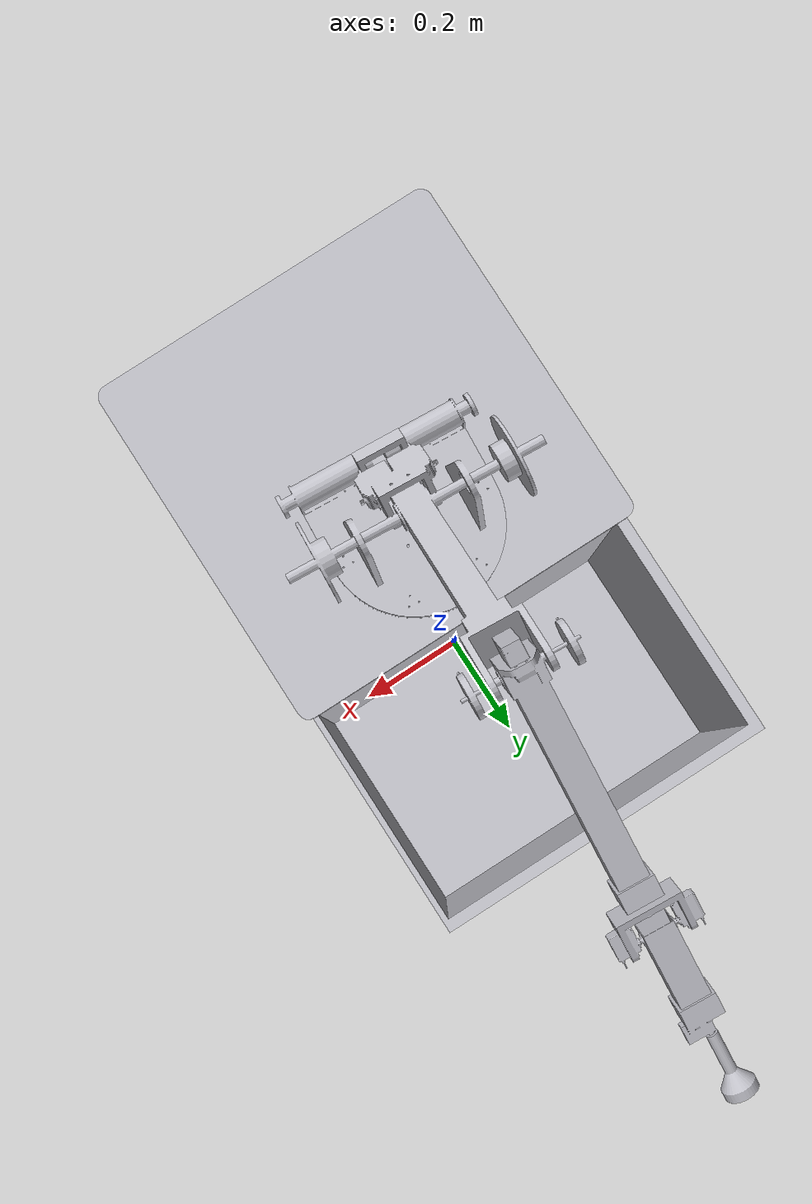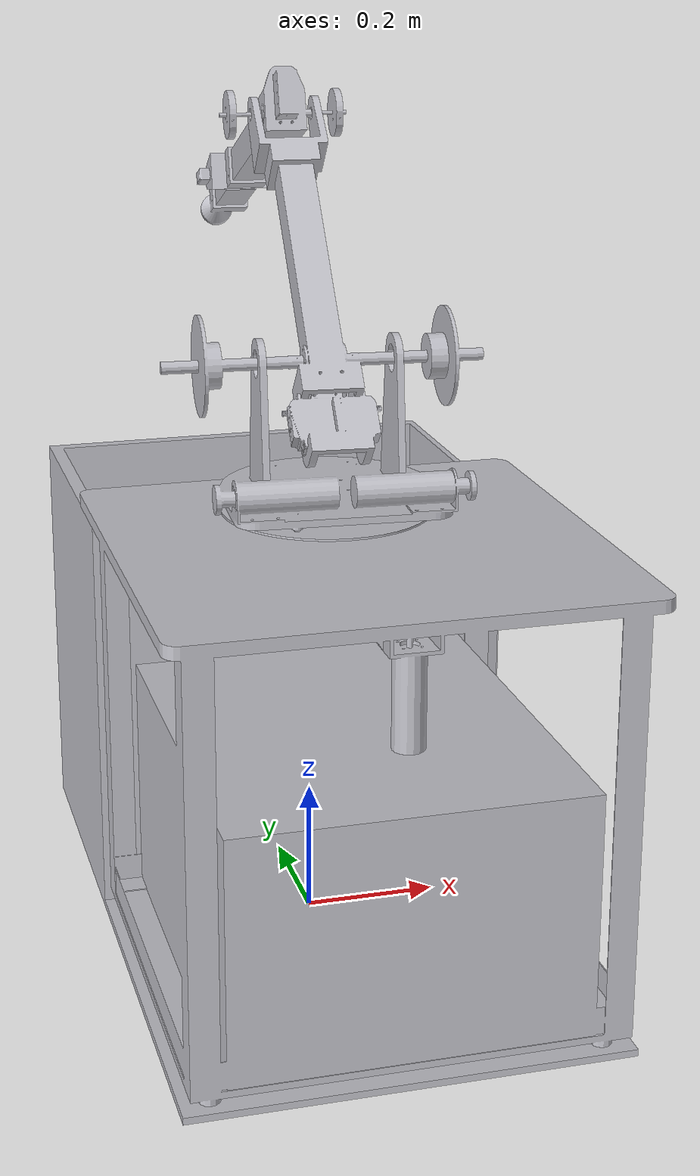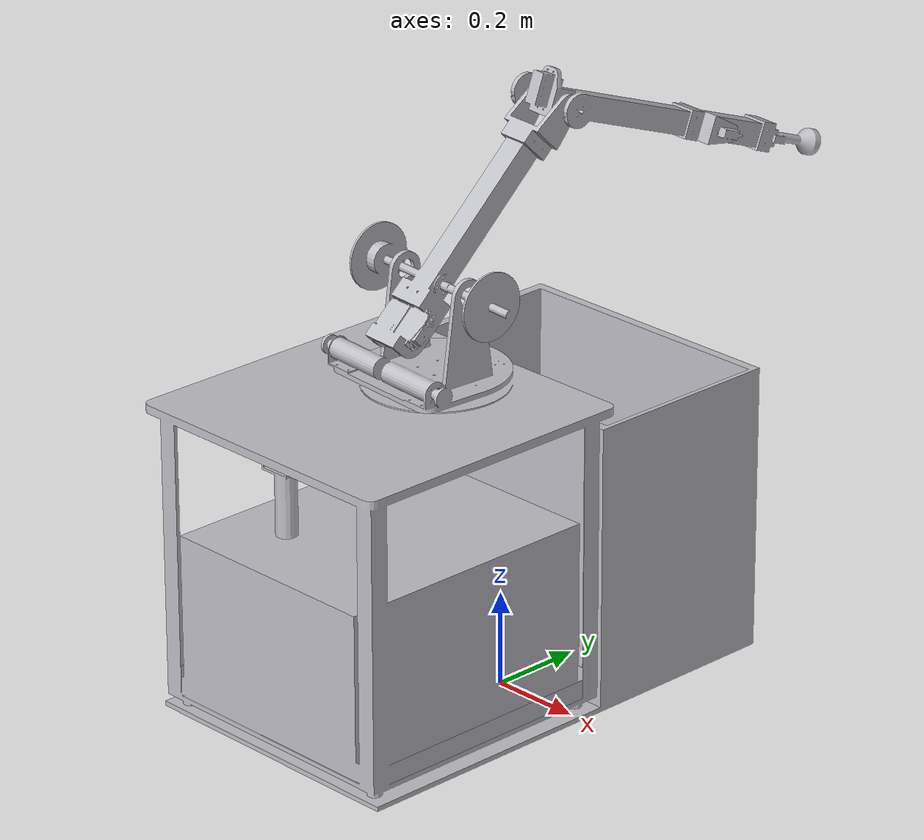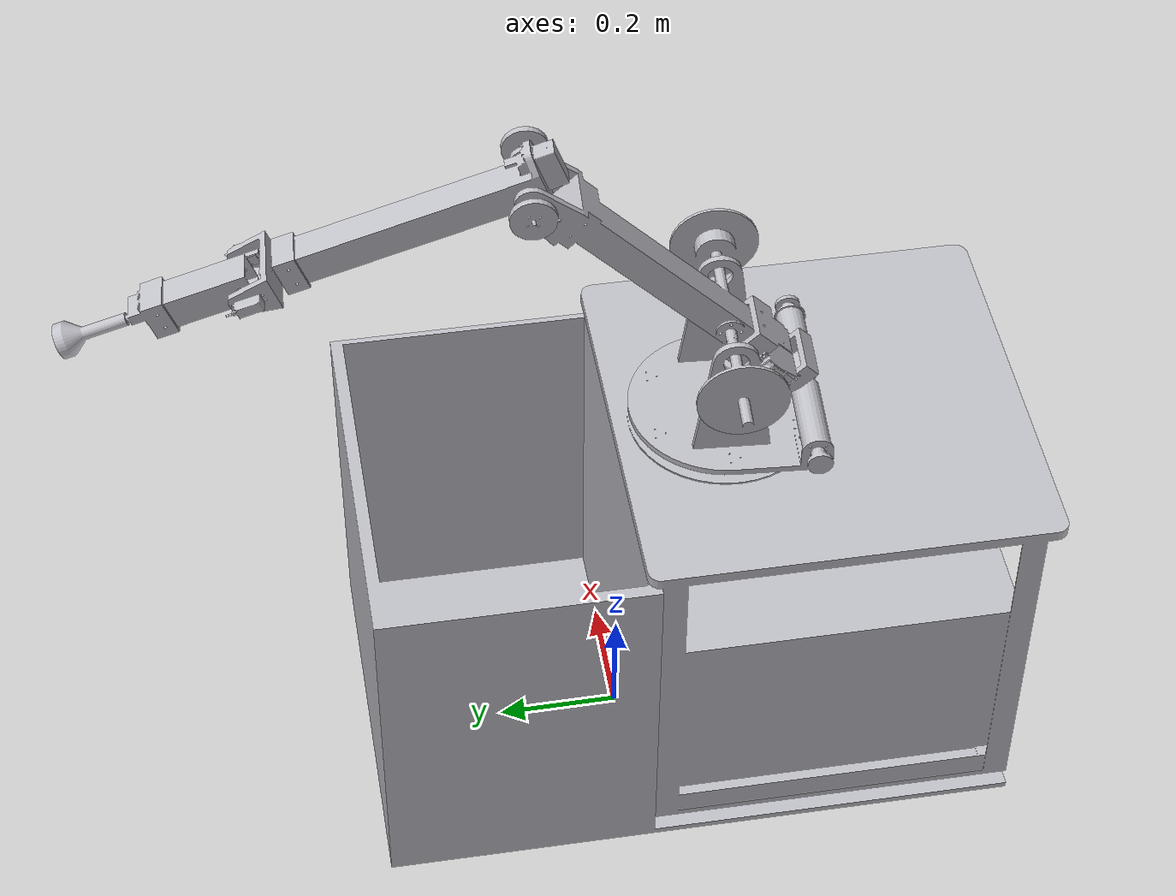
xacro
<?xml version="1.0" ?>
<robot name="final" xmlns:xacro="http://www.ros.org/wiki/xacro">

<xacro:include filename="$(find final_description)/urdf/materials.xacro" />
<xacro:include filename="$(find final_description)/urdf/final.trans" />
<xacro:include filename="$(find final_description)/urdf/final.gazebo" />
<link name="base_link">
  <inertial>
    <origin xyz="-0.04025794040578778 0.14165010590483765 0.2860735834847339" rpy="0 0 0"/>
    <mass value="17.97264000000002"/>
    <inertia ixx="1.833137" iyy="1.542102" izz="1.955592" ixy="0.030245" iyz="-0.287683" ixz="0.030749"/>
  </inertial>
  <visual>
    <origin xyz="0 0 0" rpy="0 0 0"/>
    <geometry>
      <mesh filename="file://$(find final_description)/meshes/base_link.stl" scale="0.001 0.001 0.001"/>
    </geometry>
    <material name="silver"/>
  </visual>
  <collision>
    <origin xyz="0 0 0" rpy="0 0 0"/>
    <geometry>
      <mesh filename="file://$(find final_description)/meshes/base_link.stl" scale="0.001 0.001 0.001"/>
    </geometry>
  </collision>
</link>

<link name="foundation__base_1">
  <inertial>
    <origin xyz="0.01355204523747059 0.09168679970391208 0.18442532507694448" rpy="0 0 0"/>
    <mass value="920.4727092380529"/>
    <inertia ixx="48.985183" iyy="41.31025" izz="48.576431" ixy="0.000622" iyz="0.048602" ixz="-0.042143"/>
  </inertial>
  <visual>
    <origin xyz="0.03088 0.401086 -0.100022" rpy="0 0 0"/>
    <geometry>
      <mesh filename="file://$(find final_description)/meshes/foundation__base_1.stl" scale="0.001 0.001 0.001"/>
    </geometry>
    <material name="silver"/>
  </visual>
  <collision>
    <origin xyz="0.03088 0.401086 -0.100022" rpy="0 0 0"/>
    <geometry>
      <mesh filename="file://$(find final_description)/meshes/foundation__base_1.stl" scale="0.001 0.001 0.001"/>
    </geometry>
  </collision>
</link>

<link name="foundation_fork_1">
  <inertial>
    <origin xyz="0.013060697203541947 0.27683187305279844 -0.05391028051391977" rpy="0 0 0"/>
    <mass value="2.0983050311927904"/>
    <inertia ixx="0.018494" iyy="0.020896" izz="0.024893" ixy="0.000153" iyz="0.001403" ixz="9.3e-05"/>
  </inertial>
  <visual>
    <origin xyz="0.03088 0.471086 -0.791022" rpy="0 0 0"/>
    <geometry>
      <mesh filename="file://$(find final_description)/meshes/foundation_fork_1.stl" scale="0.001 0.001 0.001"/>
    </geometry>
    <material name="silver"/>
  </visual>
  <collision>
    <origin xyz="0.03088 0.471086 -0.791022" rpy="0 0 0"/>
    <geometry>
      <mesh filename="file://$(find final_description)/meshes/foundation_fork_1.stl" scale="0.001 0.001 0.001"/>
    </geometry>
  </collision>
</link>

<link name="hand_fork_1">
  <inertial>
    <origin xyz="-1.1013898197968075 0.006896777757352757 0.04959859992152271" rpy="0 0 0"/>
    <mass value="0.19515039122298017"/>
    <inertia ixx="0.000118" iyy="0.000412" izz="0.000452" ixy="2e-05" iyz="1.6e-05" ixz="2e-06"/>
  </inertial>
  <visual>
    <origin xyz="-1.126841 -0.530578 -1.020832" rpy="0 0 0"/>
    <geometry>
      <mesh filename="file://$(find final_description)/meshes/hand_fork_1.stl" scale="0.001 0.001 0.001"/>
    </geometry>
    <material name="silver"/>
  </visual>
  <collision>
    <origin xyz="-1.126841 -0.530578 -1.020832" rpy="0 0 0"/>
    <geometry>
      <mesh filename="file://$(find final_description)/meshes/hand_fork_1.stl" scale="0.001 0.001 0.001"/>
    </geometry>
  </collision>
</link>

<link name="hand_1">
  <inertial>
    <origin xyz="1.1443603093404926 0.36632887796131397 0.40450650414389033" rpy="0 0 0"/>
    <mass value="0.39288844288416375"/>
    <inertia ixx="0.008963" iyy="0.001966" izz="0.008227" ixy="-0.000481" iyz="0.002943" ixz="0.000201"/>
  </inertial>
  <visual>
    <origin xyz="1.141028 0.152235 -0.789942" rpy="0 0 0"/>
    <geometry>
      <mesh filename="file://$(find final_description)/meshes/hand_1.stl" scale="0.001 0.001 0.001"/>
    </geometry>
    <material name="silver"/>
  </visual>
  <collision>
    <origin xyz="1.141028 0.152235 -0.789942" rpy="0 0 0"/>
    <geometry>
      <mesh filename="file://$(find final_description)/meshes/hand_1.stl" scale="0.001 0.001 0.001"/>
    </geometry>
  </collision>
</link>

<link name="end_effector_1">
  <inertial>
    <origin xyz="0.03877631864976241 0.17128922609145047 -0.06320835446115469" rpy="0 0 0"/>
    <mass value="0.5354810781353961"/>
    <inertia ixx="0.003588" iyy="0.000679" izz="0.003225" ixy="-0.000178" iyz="0.001071" ixz="6.6e-05"/>
  </inertial>
  <visual>
    <origin xyz="-0.002155 -0.563245 -1.061693" rpy="0 0 0"/>
    <geometry>
      <mesh filename="file://$(find final_description)/meshes/end_effector_1.stl" scale="0.001 0.001 0.001"/>
    </geometry>
    <material name="silver"/>
  </visual>
  <collision>
    <origin xyz="-0.002155 -0.563245 -1.061693" rpy="0 0 0"/>
    <geometry>
      <mesh filename="file://$(find final_description)/meshes/end_effector_1.stl" scale="0.001 0.001 0.001"/>
    </geometry>
  </collision>
</link>

<link name="forearm_1">
  <inertial>
    <origin xyz="-0.11185843293812174 -0.11465010627249536 -0.6640390159850146" rpy="0 0 0"/>
    <mass value="1.1580779637924898"/>
    <inertia ixx="0.036173" iyy="0.028711" izz="0.028609" ixy="-0.000513" iyz="-0.017547" ixz="-0.0012"/>
  </inertial>
  <visual>
    <origin xyz="-0.093927 0.009043 -1.615022" rpy="0 0 0"/>
    <geometry>
      <mesh filename="file://$(find final_description)/meshes/forearm_1.stl" scale="0.001 0.001 0.001"/>
    </geometry>
    <material name="silver"/>
  </visual>
  <collision>
    <origin xyz="-0.093927 0.009043 -1.615022" rpy="0 0 0"/>
    <geometry>
      <mesh filename="file://$(find final_description)/meshes/forearm_1.stl" scale="0.001 0.001 0.001"/>
    </geometry>
  </collision>
</link>

<joint name="rigid_1" type="fixed">
  <origin xyz="-0.03088 -0.401086 0.100022" rpy="0 0 0"/>
  <parent link="base_link"/>
  <child link="foundation__base_1"/>
</joint>

<joint name="foundation_base_fork" type="continuous">
  <origin xyz="0.0 -0.07 0.691" rpy="0 0 0"/>
  <parent link="foundation__base_1"/>
  <child link="foundation_fork_1"/>
  <axis xyz="-0.0 -0.0 1.0"/>
</joint>

<joint name="hand_fork" type="continuous">
  <origin xyz="2.267869 0.682813 0.23089" rpy="0 0 0"/>
  <parent link="hand_1"/>
  <child link="hand_fork_1"/>
  <axis xyz="-0.064124 -0.937502 0.34202"/>
</joint>

<joint name="hand_forearm" type="continuous">
  <origin xyz="-1.234955 -0.143192 -0.82508" rpy="0 0 0"/>
  <parent link="forearm_1"/>
  <child link="hand_1"/>
  <axis xyz="-0.997669 0.068239 0.0"/>
</joint>

<joint name="end_fork" type="continuous">
  <origin xyz="-1.124686 0.032667 0.040861" rpy="0 0 0"/>
  <parent link="hand_fork_1"/>
  <child link="end_effector_1"/>
  <axis xyz="0.997632 -0.068768 -0.001458"/>
</joint>

<joint name="forearm_fork" type="continuous">
  <origin xyz="0.124807 0.462043 0.824" rpy="0 0 0"/>
  <parent link="foundation_fork_1"/>
  <child link="forearm_1"/>
  <axis xyz="0.997669 -0.068239 -0.0"/>
</joint>

</robot>

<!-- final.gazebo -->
<robot name="final" xmlns:xacro="http://www.ros.org/wiki/xacro" >

<xacro:property name="body_color" value="Gazebo/Silver" />

<gazebo>
  <plugin name="control" filename="libgazebo_ros_control.so"/>
</gazebo>
<gazebo reference="base_link">
  <material>${body_color}</material>
  <mu1>0.2</mu1>
  <mu2>0.2</mu2>
  <self_collide>true</self_collide>
  <gravity>true</gravity>
</gazebo>

<gazebo reference="foundation__base_1">
  <material>${body_color}</material>
  <mu1>0.2</mu1>
  <mu2>0.2</mu2>
  <self_collide>true</self_collide>
</gazebo>

<gazebo reference="foundation_fork_1">
  <material>${body_color}</material>
  <mu1>0.2</mu1>
  <mu2>0.2</mu2>
  <self_collide>true</self_collide>
</gazebo>

<gazebo reference="hand_fork_1">
  <material>${body_color}</material>
  <mu1>0.2</mu1>
  <mu2>0.2</mu2>
  <self_collide>true</self_collide>
</gazebo>

<gazebo reference="hand_1">
  <material>${body_color}</material>
  <mu1>0.2</mu1>
  <mu2>0.2</mu2>
  <self_collide>true</self_collide>
</gazebo>

<gazebo reference="end_effector_1">
  <material>${body_color}</material>
  <mu1>0.2</mu1>
  <mu2>0.2</mu2>
  <self_collide>true</self_collide>
</gazebo>

<gazebo reference="forearm_1">
  <material>${body_color}</material>
  <mu1>0.2</mu1>
  <mu2>0.2</mu2>
  <self_collide>true</self_collide>
</gazebo>

</robot>
